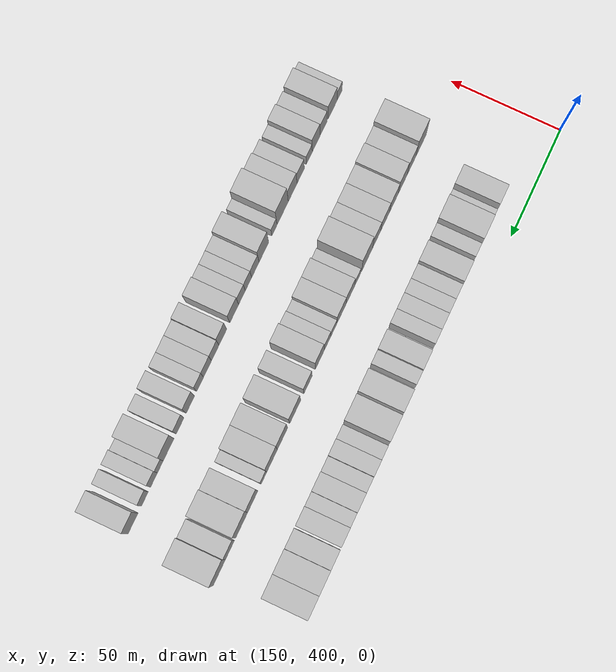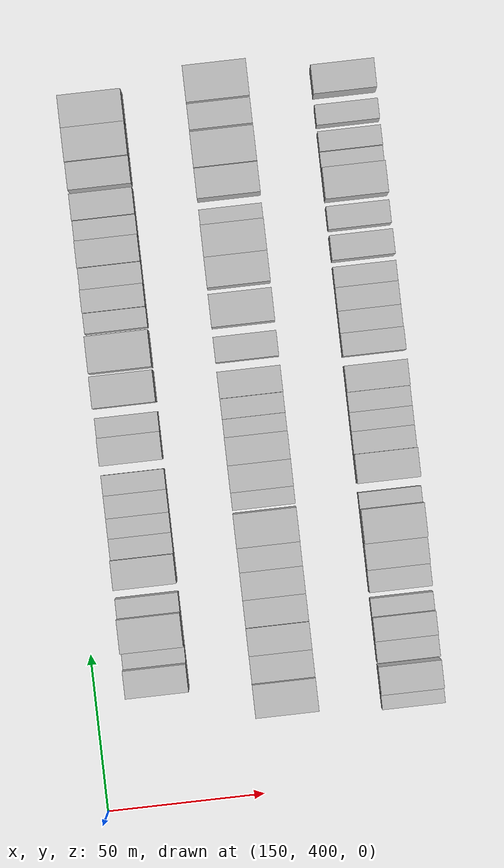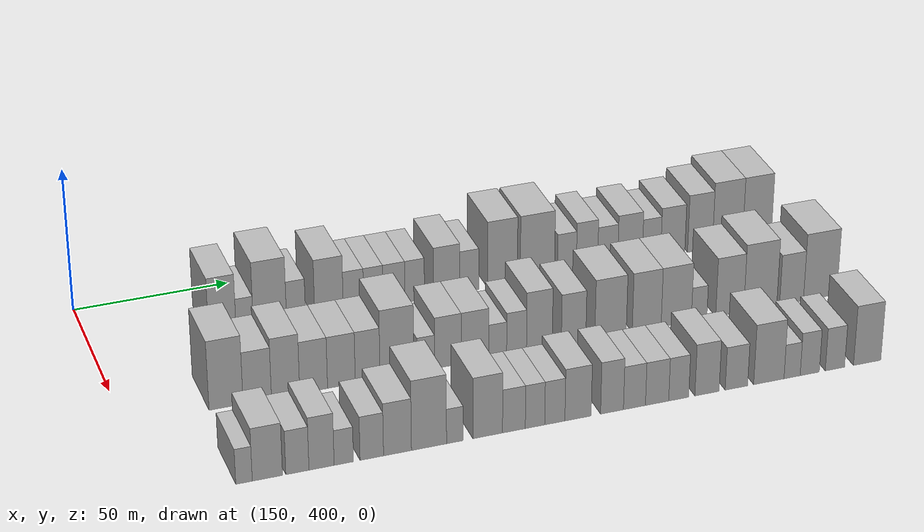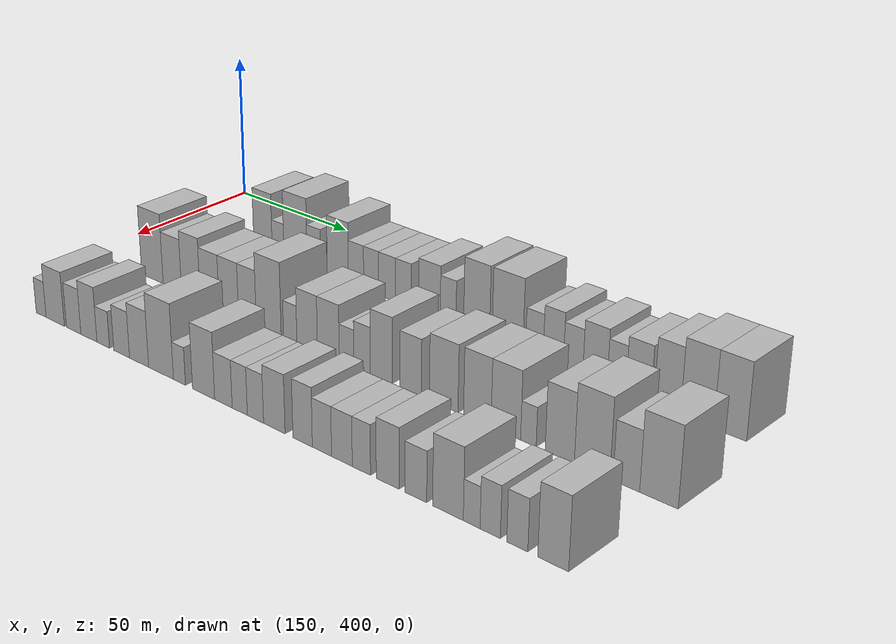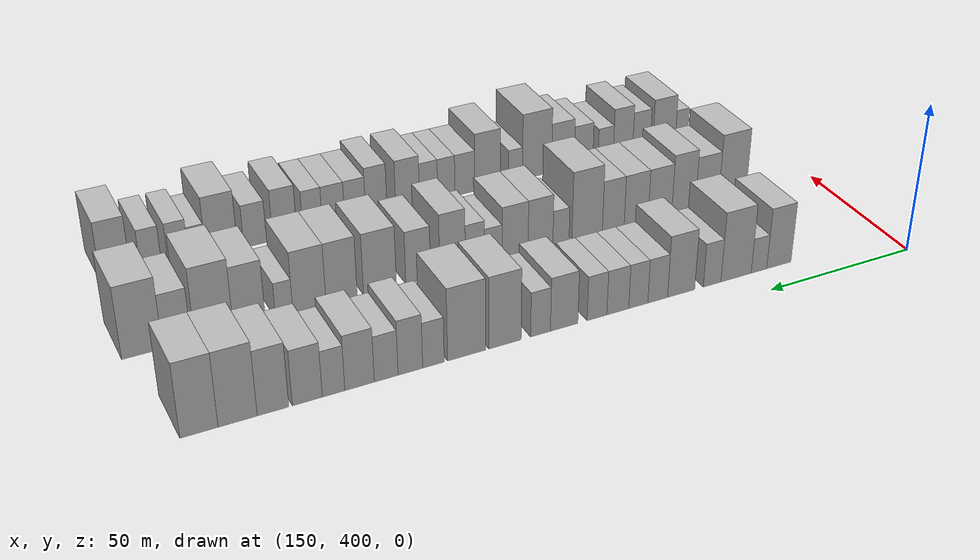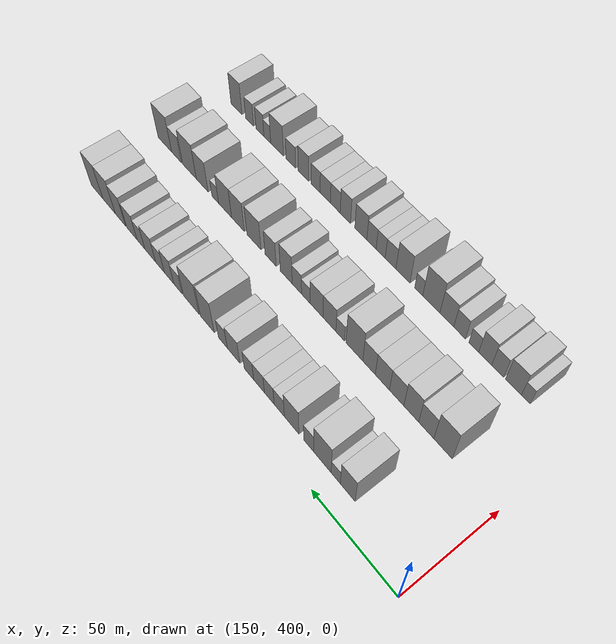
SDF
<sdf version="1.6">
 <world name="default">
  <model name="building_525">
   <static>1</static>
   <pose>170.0000 440.4379 0 0.000000 0.000000 0.000000</pose>
   <link name="link">
    <pose>0 0 10.50 0 0 0</pose>
    <collision name="collision"><geometry><box><size>20.0000 8.7908 21.0000</size></box></geometry></collision>
    <visual name="visual">
     <cast_shadows>0</cast_shadows>
     <geometry><box><size>20.0000 8.7908 21.0000</size></box></geometry>
     <material>
      <script>
       <uri>model://HANNAS_wall/materials/scripts</uri>
       <uri>model://HANNAS_wall/materials/textures</uri>
       <name>vrc/HANNAS_wall</name>
      </script>
     </material>
    </visual>
   </link>
  </model>
  <model name="building_526">
   <static>1</static>
   <pose>170.0000 447.6066 0 0.000000 0.000000 0.000000</pose>
   <link name="link">
    <pose>0 0 6.00 0 0 0</pose>
    <collision name="collision"><geometry><box><size>20.0000 5.5466 12.0000</size></box></geometry></collision>
    <visual name="visual">
     <cast_shadows>0</cast_shadows>
     <geometry><box><size>20.0000 5.5466 12.0000</size></box></geometry>
     <material>
      <script>
       <uri>model://HANNAS_wall/materials/scripts</uri>
       <uri>model://HANNAS_wall/materials/textures</uri>
       <name>vrc/HANNAS_wall</name>
      </script>
     </material>
    </visual>
   </link>
  </model>
  <model name="building_527">
   <static>1</static>
   <pose>170.0000 455.7455 0 0.000000 0.000000 0.000000</pose>
   <link name="link">
    <pose>0 0 12.00 0 0 0</pose>
    <collision name="collision"><geometry><box><size>20.0000 10.7312 24.0000</size></box></geometry></collision>
    <visual name="visual">
     <cast_shadows>0</cast_shadows>
     <geometry><box><size>20.0000 10.7312 24.0000</size></box></geometry>
     <material>
      <script>
       <uri>model://HANNAS_wall/materials/scripts</uri>
       <uri>model://HANNAS_wall/materials/textures</uri>
       <name>vrc/HANNAS_wall</name>
      </script>
     </material>
    </visual>
   </link>
  </model>
  <model name="building_528">
   <static>1</static>
   <pose>170.0000 464.1871 0 0.000000 0.000000 0.000000</pose>
   <link name="link">
    <pose>0 0 7.50 0 0 0</pose>
    <collision name="collision"><geometry><box><size>20.0000 6.1522 15.0000</size></box></geometry></collision>
    <visual name="visual">
     <cast_shadows>0</cast_shadows>
     <geometry><box><size>20.0000 6.1522 15.0000</size></box></geometry>
     <material>
      <script>
       <uri>model://HANNAS_wall/materials/scripts</uri>
       <uri>model://HANNAS_wall/materials/textures</uri>
       <name>vrc/HANNAS_wall</name>
      </script>
     </material>
    </visual>
   </link>
  </model>
  <model name="building_529">
   <static>1</static>
   <pose>170.0000 474.9335 0 0.000000 0.000000 0.000000</pose>
   <link name="link">
    <pose>0 0 10.50 0 0 0</pose>
    <collision name="collision"><geometry><box><size>20.0000 9.3405 21.0000</size></box></geometry></collision>
    <visual name="visual">
     <cast_shadows>0</cast_shadows>
     <geometry><box><size>20.0000 9.3405 21.0000</size></box></geometry>
     <material>
      <script>
       <uri>model://HANNAS_wall/materials/scripts</uri>
       <uri>model://HANNAS_wall/materials/textures</uri>
       <name>vrc/HANNAS_wall</name>
      </script>
     </material>
    </visual>
   </link>
  </model>
  <model name="building_530">
   <static>1</static>
   <pose>170.0000 482.9475 0 0.000000 0.000000 0.000000</pose>
   <link name="link">
    <pose>0 0 7.50 0 0 0</pose>
    <collision name="collision"><geometry><box><size>20.0000 6.6875 15.0000</size></box></geometry></collision>
    <visual name="visual">
     <cast_shadows>0</cast_shadows>
     <geometry><box><size>20.0000 6.6875 15.0000</size></box></geometry>
     <material>
      <script>
       <uri>model://HANNAS_wall/materials/scripts</uri>
       <uri>model://HANNAS_wall/materials/textures</uri>
       <name>vrc/HANNAS_wall</name>
      </script>
     </material>
    </visual>
   </link>
  </model>
  <model name="building_531">
   <static>1</static>
   <pose>170.0000 489.4958 0 0.000000 0.000000 0.000000</pose>
   <link name="link">
    <pose>0 0 7.50 0 0 0</pose>
    <collision name="collision"><geometry><box><size>20.0000 6.4092 15.0000</size></box></geometry></collision>
    <visual name="visual">
     <cast_shadows>0</cast_shadows>
     <geometry><box><size>20.0000 6.4092 15.0000</size></box></geometry>
     <material>
      <script>
       <uri>model://HANNAS_wall/materials/scripts</uri>
       <uri>model://HANNAS_wall/materials/textures</uri>
       <name>vrc/HANNAS_wall</name>
      </script>
     </material>
    </visual>
   </link>
  </model>
  <model name="building_532">
   <static>1</static>
   <pose>170.0000 496.3148 0 0.000000 0.000000 0.000000</pose>
   <link name="link">
    <pose>0 0 7.50 0 0 0</pose>
    <collision name="collision"><geometry><box><size>20.0000 7.2288 15.0000</size></box></geometry></collision>
    <visual name="visual">
     <cast_shadows>0</cast_shadows>
     <geometry><box><size>20.0000 7.2288 15.0000</size></box></geometry>
     <material>
      <script>
       <uri>model://HANNAS_wall/materials/scripts</uri>
       <uri>model://HANNAS_wall/materials/textures</uri>
       <name>vrc/HANNAS_wall</name>
      </script>
     </material>
    </visual>
   </link>
  </model>
  <model name="building_533">
   <static>1</static>
   <pose>170.0000 503.1783 0 0.000000 0.000000 0.000000</pose>
   <link name="link">
    <pose>0 0 7.50 0 0 0</pose>
    <collision name="collision"><geometry><box><size>20.0000 6.4983 15.0000</size></box></geometry></collision>
    <visual name="visual">
     <cast_shadows>0</cast_shadows>
     <geometry><box><size>20.0000 6.4983 15.0000</size></box></geometry>
     <material>
      <script>
       <uri>model://HANNAS_wall/materials/scripts</uri>
       <uri>model://HANNAS_wall/materials/textures</uri>
       <name>vrc/HANNAS_wall</name>
      </script>
     </material>
    </visual>
   </link>
  </model>
  <model name="building_534">
   <static>1</static>
   <pose>170.0000 513.8511 0 0.000000 0.000000 0.000000</pose>
   <link name="link">
    <pose>0 0 9.00 0 0 0</pose>
    <collision name="collision"><geometry><box><size>20.0000 8.8473 18.0000</size></box></geometry></collision>
    <visual name="visual">
     <cast_shadows>0</cast_shadows>
     <geometry><box><size>20.0000 8.8473 18.0000</size></box></geometry>
     <material>
      <script>
       <uri>model://HANNAS_wall/materials/scripts</uri>
       <uri>model://HANNAS_wall/materials/textures</uri>
       <name>vrc/HANNAS_wall</name>
      </script>
     </material>
    </visual>
   </link>
  </model>
  <model name="building_535">
   <static>1</static>
   <pose>170.0000 521.4214 0 0.000000 0.000000 0.000000</pose>
   <link name="link">
    <pose>0 0 7.50 0 0 0</pose>
    <collision name="collision"><geometry><box><size>20.0000 6.2934 15.0000</size></box></geometry></collision>
    <visual name="visual">
     <cast_shadows>0</cast_shadows>
     <geometry><box><size>20.0000 6.2934 15.0000</size></box></geometry>
     <material>
      <script>
       <uri>model://HANNAS_wall/materials/scripts</uri>
       <uri>model://HANNAS_wall/materials/textures</uri>
       <name>vrc/HANNAS_wall</name>
      </script>
     </material>
    </visual>
   </link>
  </model>
  <model name="building_536">
   <static>1</static>
   <pose>170.0000 532.6052 0 0.000000 0.000000 0.000000</pose>
   <link name="link">
    <pose>0 0 12.00 0 0 0</pose>
    <collision name="collision"><geometry><box><size>20.0000 10.0741 24.0000</size></box></geometry></collision>
    <visual name="visual">
     <cast_shadows>0</cast_shadows>
     <geometry><box><size>20.0000 10.0741 24.0000</size></box></geometry>
     <material>
      <script>
       <uri>model://HANNAS_wall/materials/scripts</uri>
       <uri>model://HANNAS_wall/materials/textures</uri>
       <name>vrc/HANNAS_wall</name>
      </script>
     </material>
    </visual>
   </link>
  </model>
  <model name="building_537">
   <static>1</static>
   <pose>170.0000 544.4705 0 0.000000 0.000000 0.000000</pose>
   <link name="link">
    <pose>0 0 12.00 0 0 0</pose>
    <collision name="collision"><geometry><box><size>20.0000 11.6567 24.0000</size></box></geometry></collision>
    <visual name="visual">
     <cast_shadows>0</cast_shadows>
     <geometry><box><size>20.0000 11.6567 24.0000</size></box></geometry>
     <material>
      <script>
       <uri>model://HANNAS_wall/materials/scripts</uri>
       <uri>model://HANNAS_wall/materials/textures</uri>
       <name>vrc/HANNAS_wall</name>
      </script>
     </material>
    </visual>
   </link>
  </model>
  <model name="building_538">
   <static>1</static>
   <pose>170.0000 554.5410 0 0.000000 0.000000 0.000000</pose>
   <link name="link">
    <pose>0 0 7.50 0 0 0</pose>
    <collision name="collision"><geometry><box><size>20.0000 6.4843 15.0000</size></box></geometry></collision>
    <visual name="visual">
     <cast_shadows>0</cast_shadows>
     <geometry><box><size>20.0000 6.4843 15.0000</size></box></geometry>
     <material>
      <script>
       <uri>model://HANNAS_wall/materials/scripts</uri>
       <uri>model://HANNAS_wall/materials/textures</uri>
       <name>vrc/HANNAS_wall</name>
      </script>
     </material>
    </visual>
   </link>
  </model>
  <model name="building_539">
   <static>1</static>
   <pose>170.0000 561.4516 0 0.000000 0.000000 0.000000</pose>
   <link name="link">
    <pose>0 0 9.00 0 0 0</pose>
    <collision name="collision"><geometry><box><size>20.0000 7.3370 18.0000</size></box></geometry></collision>
    <visual name="visual">
     <cast_shadows>0</cast_shadows>
     <geometry><box><size>20.0000 7.3370 18.0000</size></box></geometry>
     <material>
      <script>
       <uri>model://HANNAS_wall/materials/scripts</uri>
       <uri>model://HANNAS_wall/materials/textures</uri>
       <name>vrc/HANNAS_wall</name>
      </script>
     </material>
    </visual>
   </link>
  </model>
  <model name="building_540">
   <static>1</static>
   <pose>170.0000 568.5963 0 0.000000 0.000000 0.000000</pose>
   <link name="link">
    <pose>0 0 7.50 0 0 0</pose>
    <collision name="collision"><geometry><box><size>20.0000 6.9523 15.0000</size></box></geometry></collision>
    <visual name="visual">
     <cast_shadows>0</cast_shadows>
     <geometry><box><size>20.0000 6.9523 15.0000</size></box></geometry>
     <material>
      <script>
       <uri>model://HANNAS_wall/materials/scripts</uri>
       <uri>model://HANNAS_wall/materials/textures</uri>
       <name>vrc/HANNAS_wall</name>
      </script>
     </material>
    </visual>
   </link>
  </model>
  <model name="building_541">
   <static>1</static>
   <pose>170.0000 576.3454 0 0.000000 0.000000 0.000000</pose>
   <link name="link">
    <pose>0 0 9.00 0 0 0</pose>
    <collision name="collision"><geometry><box><size>20.0000 8.5460 18.0000</size></box></geometry></collision>
    <visual name="visual">
     <cast_shadows>0</cast_shadows>
     <geometry><box><size>20.0000 8.5460 18.0000</size></box></geometry>
     <material>
      <script>
       <uri>model://HANNAS_wall/materials/scripts</uri>
       <uri>model://HANNAS_wall/materials/textures</uri>
       <name>vrc/HANNAS_wall</name>
      </script>
     </material>
    </visual>
   </link>
  </model>
  <model name="building_542">
   <static>1</static>
   <pose>170.0000 583.8319 0 0.000000 0.000000 0.000000</pose>
   <link name="link">
    <pose>0 0 7.50 0 0 0</pose>
    <collision name="collision"><geometry><box><size>20.0000 6.4269 15.0000</size></box></geometry></collision>
    <visual name="visual">
     <cast_shadows>0</cast_shadows>
     <geometry><box><size>20.0000 6.4269 15.0000</size></box></geometry>
     <material>
      <script>
       <uri>model://HANNAS_wall/materials/scripts</uri>
       <uri>model://HANNAS_wall/materials/textures</uri>
       <name>vrc/HANNAS_wall</name>
      </script>
     </material>
    </visual>
   </link>
  </model>
  <model name="building_543">
   <static>1</static>
   <pose>170.0000 591.2724 0 0.000000 0.000000 0.000000</pose>
   <link name="link">
    <pose>0 0 9.00 0 0 0</pose>
    <collision name="collision"><geometry><box><size>20.0000 8.4540 18.0000</size></box></geometry></collision>
    <visual name="visual">
     <cast_shadows>0</cast_shadows>
     <geometry><box><size>20.0000 8.4540 18.0000</size></box></geometry>
     <material>
      <script>
       <uri>model://HANNAS_wall/materials/scripts</uri>
       <uri>model://HANNAS_wall/materials/textures</uri>
       <name>vrc/HANNAS_wall</name>
      </script>
     </material>
    </visual>
   </link>
  </model>
  <model name="building_544">
   <static>1</static>
   <pose>170.0000 600.8727 0 0.000000 0.000000 0.000000</pose>
   <link name="link">
    <pose>0 0 10.50 0 0 0</pose>
    <collision name="collision"><geometry><box><size>20.0000 8.7466 21.0000</size></box></geometry></collision>
    <visual name="visual">
     <cast_shadows>0</cast_shadows>
     <geometry><box><size>20.0000 8.7466 21.0000</size></box></geometry>
     <material>
      <script>
       <uri>model://HANNAS_wall/materials/scripts</uri>
       <uri>model://HANNAS_wall/materials/textures</uri>
       <name>vrc/HANNAS_wall</name>
      </script>
     </material>
    </visual>
   </link>
  </model>
  <model name="building_545">
   <static>1</static>
   <pose>170.0000 610.5800 0 0.000000 0.000000 0.000000</pose>
   <link name="link">
    <pose>0 0 12.00 0 0 0</pose>
    <collision name="collision"><geometry><box><size>20.0000 10.6678 24.0000</size></box></geometry></collision>
    <visual name="visual">
     <cast_shadows>0</cast_shadows>
     <geometry><box><size>20.0000 10.6678 24.0000</size></box></geometry>
     <material>
      <script>
       <uri>model://HANNAS_wall/materials/scripts</uri>
       <uri>model://HANNAS_wall/materials/textures</uri>
       <name>vrc/HANNAS_wall</name>
      </script>
     </material>
    </visual>
   </link>
  </model>
  <model name="building_546">
   <static>1</static>
   <pose>170.0000 621.0290 0 0.000000 0.000000 0.000000</pose>
   <link name="link">
    <pose>0 0 12.00 0 0 0</pose>
    <collision name="collision"><geometry><box><size>20.0000 10.2303 24.0000</size></box></geometry></collision>
    <visual name="visual">
     <cast_shadows>0</cast_shadows>
     <geometry><box><size>20.0000 10.2303 24.0000</size></box></geometry>
     <material>
      <script>
       <uri>model://HANNAS_wall/materials/scripts</uri>
       <uri>model://HANNAS_wall/materials/textures</uri>
       <name>vrc/HANNAS_wall</name>
      </script>
     </material>
    </visual>
   </link>
  </model>
  <model name="building_662">
   <static>1</static>
   <pose>210.0000 430.9041 0 0.000000 0.000000 0.000000</pose>
   <link name="link">
    <pose>0 0 12.00 0 0 0</pose>
    <collision name="collision"><geometry><box><size>20.0000 10.4933 24.0000</size></box></geometry></collision>
    <visual name="visual">
     <cast_shadows>0</cast_shadows>
     <geometry><box><size>20.0000 10.4933 24.0000</size></box></geometry>
     <material>
      <script>
       <uri>model://HANNAS_wall/materials/scripts</uri>
       <uri>model://HANNAS_wall/materials/textures</uri>
       <name>vrc/HANNAS_wall</name>
      </script>
     </material>
    </visual>
   </link>
  </model>
  <model name="building_663">
   <static>1</static>
   <pose>210.0000 440.5485 0 0.000000 0.000000 0.000000</pose>
   <link name="link">
    <pose>0 0 9.00 0 0 0</pose>
    <collision name="collision"><geometry><box><size>20.0000 8.7956 18.0000</size></box></geometry></collision>
    <visual name="visual">
     <cast_shadows>0</cast_shadows>
     <geometry><box><size>20.0000 8.7956 18.0000</size></box></geometry>
     <material>
      <script>
       <uri>model://HANNAS_wall/materials/scripts</uri>
       <uri>model://HANNAS_wall/materials/textures</uri>
       <name>vrc/HANNAS_wall</name>
      </script>
     </material>
    </visual>
   </link>
  </model>
  <model name="building_664">
   <static>1</static>
   <pose>210.0000 449.3477 0 0.000000 0.000000 0.000000</pose>
   <link name="link">
    <pose>0 0 10.50 0 0 0</pose>
    <collision name="collision"><geometry><box><size>20.0000 8.8027 21.0000</size></box></geometry></collision>
    <visual name="visual">
     <cast_shadows>0</cast_shadows>
     <geometry><box><size>20.0000 8.8027 21.0000</size></box></geometry>
     <material>
      <script>
       <uri>model://HANNAS_wall/materials/scripts</uri>
       <uri>model://HANNAS_wall/materials/textures</uri>
       <name>vrc/HANNAS_wall</name>
      </script>
     </material>
    </visual>
   </link>
  </model>
  <model name="building_665">
   <static>1</static>
   <pose>210.0000 458.1036 0 0.000000 0.000000 0.000000</pose>
   <link name="link">
    <pose>0 0 9.00 0 0 0</pose>
    <collision name="collision"><geometry><box><size>20.0000 8.7091 18.0000</size></box></geometry></collision>
    <visual name="visual">
     <cast_shadows>0</cast_shadows>
     <geometry><box><size>20.0000 8.7091 18.0000</size></box></geometry>
     <material>
      <script>
       <uri>model://HANNAS_wall/materials/scripts</uri>
       <uri>model://HANNAS_wall/materials/textures</uri>
       <name>vrc/HANNAS_wall</name>
      </script>
     </material>
    </visual>
   </link>
  </model>
  <model name="building_666">
   <static>1</static>
   <pose>210.0000 466.8326 0 0.000000 0.000000 0.000000</pose>
   <link name="link">
    <pose>0 0 9.00 0 0 0</pose>
    <collision name="collision"><geometry><box><size>20.0000 8.7491 18.0000</size></box></geometry></collision>
    <visual name="visual">
     <cast_shadows>0</cast_shadows>
     <geometry><box><size>20.0000 8.7491 18.0000</size></box></geometry>
     <material>
      <script>
       <uri>model://HANNAS_wall/materials/scripts</uri>
       <uri>model://HANNAS_wall/materials/textures</uri>
       <name>vrc/HANNAS_wall</name>
      </script>
     </material>
    </visual>
   </link>
  </model>
  <model name="building_667">
   <static>1</static>
   <pose>210.0000 475.1297 0 0.000000 0.000000 0.000000</pose>
   <link name="link">
    <pose>0 0 9.00 0 0 0</pose>
    <collision name="collision"><geometry><box><size>20.0000 7.8452 18.0000</size></box></geometry></collision>
    <visual name="visual">
     <cast_shadows>0</cast_shadows>
     <geometry><box><size>20.0000 7.8452 18.0000</size></box></geometry>
     <material>
      <script>
       <uri>model://HANNAS_wall/materials/scripts</uri>
       <uri>model://HANNAS_wall/materials/textures</uri>
       <name>vrc/HANNAS_wall</name>
      </script>
     </material>
    </visual>
   </link>
  </model>
  <model name="building_668">
   <static>1</static>
   <pose>210.0000 484.4471 0 0.000000 0.000000 0.000000</pose>
   <link name="link">
    <pose>0 0 12.00 0 0 0</pose>
    <collision name="collision"><geometry><box><size>20.0000 10.7894 24.0000</size></box></geometry></collision>
    <visual name="visual">
     <cast_shadows>0</cast_shadows>
     <geometry><box><size>20.0000 10.7894 24.0000</size></box></geometry>
     <material>
      <script>
       <uri>model://HANNAS_wall/materials/scripts</uri>
       <uri>model://HANNAS_wall/materials/textures</uri>
       <name>vrc/HANNAS_wall</name>
      </script>
     </material>
    </visual>
   </link>
  </model>
  <model name="building_669">
   <static>1</static>
   <pose>210.0000 493.6613 0 0.000000 0.000000 0.000000</pose>
   <link name="link">
    <pose>0 0 6.00 0 0 0</pose>
    <collision name="collision"><geometry><box><size>20.0000 5.6390 12.0000</size></box></geometry></collision>
    <visual name="visual">
     <cast_shadows>0</cast_shadows>
     <geometry><box><size>20.0000 5.6390 12.0000</size></box></geometry>
     <material>
      <script>
       <uri>model://HANNAS_wall/materials/scripts</uri>
       <uri>model://HANNAS_wall/materials/textures</uri>
       <name>vrc/HANNAS_wall</name>
      </script>
     </material>
    </visual>
   </link>
  </model>
  <model name="building_670">
   <static>1</static>
   <pose>210.0000 500.7571 0 0.000000 0.000000 0.000000</pose>
   <link name="link">
    <pose>0 0 9.00 0 0 0</pose>
    <collision name="collision"><geometry><box><size>20.0000 8.5526 18.0000</size></box></geometry></collision>
    <visual name="visual">
     <cast_shadows>0</cast_shadows>
     <geometry><box><size>20.0000 8.5526 18.0000</size></box></geometry>
     <material>
      <script>
       <uri>model://HANNAS_wall/materials/scripts</uri>
       <uri>model://HANNAS_wall/materials/textures</uri>
       <name>vrc/HANNAS_wall</name>
      </script>
     </material>
    </visual>
   </link>
  </model>
  <model name="building_671">
   <static>1</static>
   <pose>210.0000 509.4874 0 0.000000 0.000000 0.000000</pose>
   <link name="link">
    <pose>0 0 9.00 0 0 0</pose>
    <collision name="collision"><geometry><box><size>20.0000 8.9080 18.0000</size></box></geometry></collision>
    <visual name="visual">
     <cast_shadows>0</cast_shadows>
     <geometry><box><size>20.0000 8.9080 18.0000</size></box></geometry>
     <material>
      <script>
       <uri>model://HANNAS_wall/materials/scripts</uri>
       <uri>model://HANNAS_wall/materials/textures</uri>
       <name>vrc/HANNAS_wall</name>
      </script>
     </material>
    </visual>
   </link>
  </model>
  <model name="building_672">
   <static>1</static>
   <pose>210.0000 516.8400 0 0.000000 0.000000 0.000000</pose>
   <link name="link">
    <pose>0 0 6.00 0 0 0</pose>
    <collision name="collision"><geometry><box><size>20.0000 5.7973 12.0000</size></box></geometry></collision>
    <visual name="visual">
     <cast_shadows>0</cast_shadows>
     <geometry><box><size>20.0000 5.7973 12.0000</size></box></geometry>
     <material>
      <script>
       <uri>model://HANNAS_wall/materials/scripts</uri>
       <uri>model://HANNAS_wall/materials/textures</uri>
       <name>vrc/HANNAS_wall</name>
      </script>
     </material>
    </visual>
   </link>
  </model>
  <model name="building_673">
   <static>1</static>
   <pose>210.0000 522.9823 0 0.000000 0.000000 0.000000</pose>
   <link name="link">
    <pose>0 0 7.50 0 0 0</pose>
    <collision name="collision"><geometry><box><size>20.0000 6.4872 15.0000</size></box></geometry></collision>
    <visual name="visual">
     <cast_shadows>0</cast_shadows>
     <geometry><box><size>20.0000 6.4872 15.0000</size></box></geometry>
     <material>
      <script>
       <uri>model://HANNAS_wall/materials/scripts</uri>
       <uri>model://HANNAS_wall/materials/textures</uri>
       <name>vrc/HANNAS_wall</name>
      </script>
     </material>
    </visual>
   </link>
  </model>
  <model name="building_674">
   <static>1</static>
   <pose>210.0000 530.4381 0 0.000000 0.000000 0.000000</pose>
   <link name="link">
    <pose>0 0 10.50 0 0 0</pose>
    <collision name="collision"><geometry><box><size>20.0000 8.4245 21.0000</size></box></geometry></collision>
    <visual name="visual">
     <cast_shadows>0</cast_shadows>
     <geometry><box><size>20.0000 8.4245 21.0000</size></box></geometry>
     <material>
      <script>
       <uri>model://HANNAS_wall/materials/scripts</uri>
       <uri>model://HANNAS_wall/materials/textures</uri>
       <name>vrc/HANNAS_wall</name>
      </script>
     </material>
    </visual>
   </link>
  </model>
  <model name="building_675">
   <static>1</static>
   <pose>210.0000 541.6831 0 0.000000 0.000000 0.000000</pose>
   <link name="link">
    <pose>0 0 9.00 0 0 0</pose>
    <collision name="collision"><geometry><box><size>20.0000 8.0656 18.0000</size></box></geometry></collision>
    <visual name="visual">
     <cast_shadows>0</cast_shadows>
     <geometry><box><size>20.0000 8.0656 18.0000</size></box></geometry>
     <material>
      <script>
       <uri>model://HANNAS_wall/materials/scripts</uri>
       <uri>model://HANNAS_wall/materials/textures</uri>
       <name>vrc/HANNAS_wall</name>
      </script>
     </material>
    </visual>
   </link>
  </model>
  <model name="building_676">
   <static>1</static>
   <pose>210.0000 553.9377 0 0.000000 0.000000 0.000000</pose>
   <link name="link">
    <pose>0 0 10.50 0 0 0</pose>
    <collision name="collision"><geometry><box><size>20.0000 10.4436 21.0000</size></box></geometry></collision>
    <visual name="visual">
     <cast_shadows>0</cast_shadows>
     <geometry><box><size>20.0000 10.4436 21.0000</size></box></geometry>
     <material>
      <script>
       <uri>model://HANNAS_wall/materials/scripts</uri>
       <uri>model://HANNAS_wall/materials/textures</uri>
       <name>vrc/HANNAS_wall</name>
      </script>
     </material>
    </visual>
   </link>
  </model>
  <model name="building_677">
   <static>1</static>
   <pose>210.0000 566.0054 0 0.000000 0.000000 0.000000</pose>
   <link name="link">
    <pose>0 0 10.50 0 0 0</pose>
    <collision name="collision"><geometry><box><size>20.0000 9.6917 21.0000</size></box></geometry></collision>
    <visual name="visual">
     <cast_shadows>0</cast_shadows>
     <geometry><box><size>20.0000 9.6917 21.0000</size></box></geometry>
     <material>
      <script>
       <uri>model://HANNAS_wall/materials/scripts</uri>
       <uri>model://HANNAS_wall/materials/textures</uri>
       <name>vrc/HANNAS_wall</name>
      </script>
     </material>
    </visual>
   </link>
  </model>
  <model name="building_678">
   <static>1</static>
   <pose>210.0000 575.9415 0 0.000000 0.000000 0.000000</pose>
   <link name="link">
    <pose>0 0 10.50 0 0 0</pose>
    <collision name="collision"><geometry><box><size>20.0000 10.1805 21.0000</size></box></geometry></collision>
    <visual name="visual">
     <cast_shadows>0</cast_shadows>
     <geometry><box><size>20.0000 10.1805 21.0000</size></box></geometry>
     <material>
      <script>
       <uri>model://HANNAS_wall/materials/scripts</uri>
       <uri>model://HANNAS_wall/materials/textures</uri>
       <name>vrc/HANNAS_wall</name>
      </script>
     </material>
    </visual>
   </link>
  </model>
  <model name="building_679">
   <static>1</static>
   <pose>210.0000 583.6667 0 0.000000 0.000000 0.000000</pose>
   <link name="link">
    <pose>0 0 6.00 0 0 0</pose>
    <collision name="collision"><geometry><box><size>20.0000 5.2700 12.0000</size></box></geometry></collision>
    <visual name="visual">
     <cast_shadows>0</cast_shadows>
     <geometry><box><size>20.0000 5.2700 12.0000</size></box></geometry>
     <material>
      <script>
       <uri>model://HANNAS_wall/materials/scripts</uri>
       <uri>model://HANNAS_wall/materials/textures</uri>
       <name>vrc/HANNAS_wall</name>
      </script>
     </material>
    </visual>
   </link>
  </model>
  <model name="building_680">
   <static>1</static>
   <pose>210.0000 594.0833 0 0.000000 0.000000 0.000000</pose>
   <link name="link">
    <pose>0 0 10.50 0 0 0</pose>
    <collision name="collision"><geometry><box><size>20.0000 9.5631 21.0000</size></box></geometry></collision>
    <visual name="visual">
     <cast_shadows>0</cast_shadows>
     <geometry><box><size>20.0000 9.5631 21.0000</size></box></geometry>
     <material>
      <script>
       <uri>model://HANNAS_wall/materials/scripts</uri>
       <uri>model://HANNAS_wall/materials/textures</uri>
       <name>vrc/HANNAS_wall</name>
      </script>
     </material>
    </visual>
   </link>
  </model>
  <model name="building_681">
   <static>1</static>
   <pose>210.0000 604.5281 0 0.000000 0.000000 0.000000</pose>
   <link name="link">
    <pose>0 0 12.00 0 0 0</pose>
    <collision name="collision"><geometry><box><size>20.0000 11.3264 24.0000</size></box></geometry></collision>
    <visual name="visual">
     <cast_shadows>0</cast_shadows>
     <geometry><box><size>20.0000 11.3264 24.0000</size></box></geometry>
     <material>
      <script>
       <uri>model://HANNAS_wall/materials/scripts</uri>
       <uri>model://HANNAS_wall/materials/textures</uri>
       <name>vrc/HANNAS_wall</name>
      </script>
     </material>
    </visual>
   </link>
  </model>
  <model name="building_682">
   <static>1</static>
   <pose>210.0000 615.3019 0 0.000000 0.000000 0.000000</pose>
   <link name="link">
    <pose>0 0 9.00 0 0 0</pose>
    <collision name="collision"><geometry><box><size>20.0000 8.2212 18.0000</size></box></geometry></collision>
    <visual name="visual">
     <cast_shadows>0</cast_shadows>
     <geometry><box><size>20.0000 8.2212 18.0000</size></box></geometry>
     <material>
      <script>
       <uri>model://HANNAS_wall/materials/scripts</uri>
       <uri>model://HANNAS_wall/materials/textures</uri>
       <name>vrc/HANNAS_wall</name>
      </script>
     </material>
    </visual>
   </link>
  </model>
  <model name="building_683">
   <static>1</static>
   <pose>210.0000 625.2201 0 0.000000 0.000000 0.000000</pose>
   <link name="link">
    <pose>0 0 12.00 0 0 0</pose>
    <collision name="collision"><geometry><box><size>20.0000 11.6153 24.0000</size></box></geometry></collision>
    <visual name="visual">
     <cast_shadows>0</cast_shadows>
     <geometry><box><size>20.0000 11.6153 24.0000</size></box></geometry>
     <material>
      <script>
       <uri>model://HANNAS_wall/materials/scripts</uri>
       <uri>model://HANNAS_wall/materials/textures</uri>
       <name>vrc/HANNAS_wall</name>
      </script>
     </material>
    </visual>
   </link>
  </model>
  <model name="building_803">
   <static>1</static>
   <pose>250.0000 425.5253 0 0.000000 0.000000 0.000000</pose>
   <link name="link">
    <pose>0 0 6.00 0 0 0</pose>
    <collision name="collision"><geometry><box><size>20.0000 4.9070 12.0000</size></box></geometry></collision>
    <visual name="visual">
     <cast_shadows>0</cast_shadows>
     <geometry><box><size>20.0000 4.9070 12.0000</size></box></geometry>
     <material>
      <script>
       <uri>model://HANNAS_wall/materials/scripts</uri>
       <uri>model://HANNAS_wall/materials/textures</uri>
       <name>vrc/HANNAS_wall</name>
      </script>
     </material>
    </visual>
   </link>
  </model>
  <model name="building_804">
   <static>1</static>
   <pose>250.0000 432.4757 0 0.000000 0.000000 0.000000</pose>
   <link name="link">
    <pose>0 0 9.00 0 0 0</pose>
    <collision name="collision"><geometry><box><size>20.0000 8.9939 18.0000</size></box></geometry></collision>
    <visual name="visual">
     <cast_shadows>0</cast_shadows>
     <geometry><box><size>20.0000 8.9939 18.0000</size></box></geometry>
     <material>
      <script>
       <uri>model://HANNAS_wall/materials/scripts</uri>
       <uri>model://HANNAS_wall/materials/textures</uri>
       <name>vrc/HANNAS_wall</name>
      </script>
     </material>
    </visual>
   </link>
  </model>
  <model name="building_805">
   <static>1</static>
   <pose>250.0000 441.4402 0 0.000000 0.000000 0.000000</pose>
   <link name="link">
    <pose>0 0 7.50 0 0 0</pose>
    <collision name="collision"><geometry><box><size>20.0000 6.9351 15.0000</size></box></geometry></collision>
    <visual name="visual">
     <cast_shadows>0</cast_shadows>
     <geometry><box><size>20.0000 6.9351 15.0000</size></box></geometry>
     <material>
      <script>
       <uri>model://HANNAS_wall/materials/scripts</uri>
       <uri>model://HANNAS_wall/materials/textures</uri>
       <name>vrc/HANNAS_wall</name>
      </script>
     </material>
    </visual>
   </link>
  </model>
  <model name="building_806">
   <static>1</static>
   <pose>250.0000 448.6980 0 0.000000 0.000000 0.000000</pose>
   <link name="link">
    <pose>0 0 9.00 0 0 0</pose>
    <collision name="collision"><geometry><box><size>20.0000 7.5803 18.0000</size></box></geometry></collision>
    <visual name="visual">
     <cast_shadows>0</cast_shadows>
     <geometry><box><size>20.0000 7.5803 18.0000</size></box></geometry>
     <material>
      <script>
       <uri>model://HANNAS_wall/materials/scripts</uri>
       <uri>model://HANNAS_wall/materials/textures</uri>
       <name>vrc/HANNAS_wall</name>
      </script>
     </material>
    </visual>
   </link>
  </model>
  <model name="building_807">
   <static>1</static>
   <pose>250.0000 455.4065 0 0.000000 0.000000 0.000000</pose>
   <link name="link">
    <pose>0 0 6.00 0 0 0</pose>
    <collision name="collision"><geometry><box><size>20.0000 5.8368 12.0000</size></box></geometry></collision>
    <visual name="visual">
     <cast_shadows>0</cast_shadows>
     <geometry><box><size>20.0000 5.8368 12.0000</size></box></geometry>
     <material>
      <script>
       <uri>model://HANNAS_wall/materials/scripts</uri>
       <uri>model://HANNAS_wall/materials/textures</uri>
       <name>vrc/HANNAS_wall</name>
      </script>
     </material>
    </visual>
   </link>
  </model>
  <model name="building_808">
   <static>1</static>
   <pose>250.0000 463.8962 0 0.000000 0.000000 0.000000</pose>
   <link name="link">
    <pose>0 0 7.50 0 0 0</pose>
    <collision name="collision"><geometry><box><size>20.0000 7.1427 15.0000</size></box></geometry></collision>
    <visual name="visual">
     <cast_shadows>0</cast_shadows>
     <geometry><box><size>20.0000 7.1427 15.0000</size></box></geometry>
     <material>
      <script>
       <uri>model://HANNAS_wall/materials/scripts</uri>
       <uri>model://HANNAS_wall/materials/textures</uri>
       <name>vrc/HANNAS_wall</name>
      </script>
     </material>
    </visual>
   </link>
  </model>
  <model name="building_809">
   <static>1</static>
   <pose>250.0000 471.7340 0 0.000000 0.000000 0.000000</pose>
   <link name="link">
    <pose>0 0 9.00 0 0 0</pose>
    <collision name="collision"><geometry><box><size>20.0000 8.5328 18.0000</size></box></geometry></collision>
    <visual name="visual">
     <cast_shadows>0</cast_shadows>
     <geometry><box><size>20.0000 8.5328 18.0000</size></box></geometry>
     <material>
      <script>
       <uri>model://HANNAS_wall/materials/scripts</uri>
       <uri>model://HANNAS_wall/materials/textures</uri>
       <name>vrc/HANNAS_wall</name>
      </script>
     </material>
    </visual>
   </link>
  </model>
  <model name="building_810">
   <static>1</static>
   <pose>250.0000 481.4002 0 0.000000 0.000000 0.000000</pose>
   <link name="link">
    <pose>0 0 12.00 0 0 0</pose>
    <collision name="collision"><geometry><box><size>20.0000 10.7994 24.0000</size></box></geometry></collision>
    <visual name="visual">
     <cast_shadows>0</cast_shadows>
     <geometry><box><size>20.0000 10.7994 24.0000</size></box></geometry>
     <material>
      <script>
       <uri>model://HANNAS_wall/materials/scripts</uri>
       <uri>model://HANNAS_wall/materials/textures</uri>
       <name>vrc/HANNAS_wall</name>
      </script>
     </material>
    </visual>
   </link>
  </model>
  <model name="building_811">
   <static>1</static>
   <pose>250.0000 489.3696 0 0.000000 0.000000 0.000000</pose>
   <link name="link">
    <pose>0 0 6.00 0 0 0</pose>
    <collision name="collision"><geometry><box><size>20.0000 5.1395 12.0000</size></box></geometry></collision>
    <visual name="visual">
     <cast_shadows>0</cast_shadows>
     <geometry><box><size>20.0000 5.1395 12.0000</size></box></geometry>
     <material>
      <script>
       <uri>model://HANNAS_wall/materials/scripts</uri>
       <uri>model://HANNAS_wall/materials/textures</uri>
       <name>vrc/HANNAS_wall</name>
      </script>
     </material>
    </visual>
   </link>
  </model>
  <model name="building_812">
   <static>1</static>
   <pose>250.0000 499.5551 0 0.000000 0.000000 0.000000</pose>
   <link name="link">
    <pose>0 0 10.50 0 0 0</pose>
    <collision name="collision"><geometry><box><size>20.0000 9.2315 21.0000</size></box></geometry></collision>
    <visual name="visual">
     <cast_shadows>0</cast_shadows>
     <geometry><box><size>20.0000 9.2315 21.0000</size></box></geometry>
     <material>
      <script>
       <uri>model://HANNAS_wall/materials/scripts</uri>
       <uri>model://HANNAS_wall/materials/textures</uri>
       <name>vrc/HANNAS_wall</name>
      </script>
     </material>
    </visual>
   </link>
  </model>
  <model name="building_813">
   <static>1</static>
   <pose>250.0000 507.7377 0 0.000000 0.000000 0.000000</pose>
   <link name="link">
    <pose>0 0 7.50 0 0 0</pose>
    <collision name="collision"><geometry><box><size>20.0000 7.1337 15.0000</size></box></geometry></collision>
    <visual name="visual">
     <cast_shadows>0</cast_shadows>
     <geometry><box><size>20.0000 7.1337 15.0000</size></box></geometry>
     <material>
      <script>
       <uri>model://HANNAS_wall/materials/scripts</uri>
       <uri>model://HANNAS_wall/materials/textures</uri>
       <name>vrc/HANNAS_wall</name>
      </script>
     </material>
    </visual>
   </link>
  </model>
  <model name="building_814">
   <static>1</static>
   <pose>250.0000 514.3504 0 0.000000 0.000000 0.000000</pose>
   <link name="link">
    <pose>0 0 7.50 0 0 0</pose>
    <collision name="collision"><geometry><box><size>20.0000 6.0918 15.0000</size></box></geometry></collision>
    <visual name="visual">
     <cast_shadows>0</cast_shadows>
     <geometry><box><size>20.0000 6.0918 15.0000</size></box></geometry>
     <material>
      <script>
       <uri>model://HANNAS_wall/materials/scripts</uri>
       <uri>model://HANNAS_wall/materials/textures</uri>
       <name>vrc/HANNAS_wall</name>
      </script>
     </material>
    </visual>
   </link>
  </model>
  <model name="building_815">
   <static>1</static>
   <pose>250.0000 520.5863 0 0.000000 0.000000 0.000000</pose>
   <link name="link">
    <pose>0 0 7.50 0 0 0</pose>
    <collision name="collision"><geometry><box><size>20.0000 6.3800 15.0000</size></box></geometry></collision>
    <visual name="visual">
     <cast_shadows>0</cast_shadows>
     <geometry><box><size>20.0000 6.3800 15.0000</size></box></geometry>
     <material>
      <script>
       <uri>model://HANNAS_wall/materials/scripts</uri>
       <uri>model://HANNAS_wall/materials/textures</uri>
       <name>vrc/HANNAS_wall</name>
      </script>
     </material>
    </visual>
   </link>
  </model>
  <model name="building_816">
   <static>1</static>
   <pose>250.0000 527.9381 0 0.000000 0.000000 0.000000</pose>
   <link name="link">
    <pose>0 0 9.00 0 0 0</pose>
    <collision name="collision"><geometry><box><size>20.0000 8.3235 18.0000</size></box></geometry></collision>
    <visual name="visual">
     <cast_shadows>0</cast_shadows>
     <geometry><box><size>20.0000 8.3235 18.0000</size></box></geometry>
     <material>
      <script>
       <uri>model://HANNAS_wall/materials/scripts</uri>
       <uri>model://HANNAS_wall/materials/textures</uri>
       <name>vrc/HANNAS_wall</name>
      </script>
     </material>
    </visual>
   </link>
  </model>
  <model name="building_817">
   <static>1</static>
   <pose>250.0000 538.7513 0 0.000000 0.000000 0.000000</pose>
   <link name="link">
    <pose>0 0 9.00 0 0 0</pose>
    <collision name="collision"><geometry><box><size>20.0000 7.3028 18.0000</size></box></geometry></collision>
    <visual name="visual">
     <cast_shadows>0</cast_shadows>
     <geometry><box><size>20.0000 7.3028 18.0000</size></box></geometry>
     <material>
      <script>
       <uri>model://HANNAS_wall/materials/scripts</uri>
       <uri>model://HANNAS_wall/materials/textures</uri>
       <name>vrc/HANNAS_wall</name>
      </script>
     </material>
    </visual>
   </link>
  </model>
  <model name="building_818">
   <static>1</static>
   <pose>250.0000 545.9351 0 0.000000 0.000000 0.000000</pose>
   <link name="link">
    <pose>0 0 7.50 0 0 0</pose>
    <collision name="collision"><geometry><box><size>20.0000 7.0649 15.0000</size></box></geometry></collision>
    <visual name="visual">
     <cast_shadows>0</cast_shadows>
     <geometry><box><size>20.0000 7.0649 15.0000</size></box></geometry>
     <material>
      <script>
       <uri>model://HANNAS_wall/materials/scripts</uri>
       <uri>model://HANNAS_wall/materials/textures</uri>
       <name>vrc/HANNAS_wall</name>
      </script>
     </material>
    </visual>
   </link>
  </model>
  <model name="building_819">
   <static>1</static>
   <pose>250.0000 553.2124 0 0.000000 0.000000 0.000000</pose>
   <link name="link">
    <pose>0 0 7.50 0 0 0</pose>
    <collision name="collision"><geometry><box><size>20.0000 7.4897 15.0000</size></box></geometry></collision>
    <visual name="visual">
     <cast_shadows>0</cast_shadows>
     <geometry><box><size>20.0000 7.4897 15.0000</size></box></geometry>
     <material>
      <script>
       <uri>model://HANNAS_wall/materials/scripts</uri>
       <uri>model://HANNAS_wall/materials/textures</uri>
       <name>vrc/HANNAS_wall</name>
      </script>
     </material>
    </visual>
   </link>
  </model>
  <model name="building_820">
   <static>1</static>
   <pose>250.0000 560.1949 0 0.000000 0.000000 0.000000</pose>
   <link name="link">
    <pose>0 0 7.50 0 0 0</pose>
    <collision name="collision"><geometry><box><size>20.0000 6.4754 15.0000</size></box></geometry></collision>
    <visual name="visual">
     <cast_shadows>0</cast_shadows>
     <geometry><box><size>20.0000 6.4754 15.0000</size></box></geometry>
     <material>
      <script>
       <uri>model://HANNAS_wall/materials/scripts</uri>
       <uri>model://HANNAS_wall/materials/textures</uri>
       <name>vrc/HANNAS_wall</name>
      </script>
     </material>
    </visual>
   </link>
  </model>
  <model name="building_821">
   <static>1</static>
   <pose>250.0000 569.3709 0 0.000000 0.000000 0.000000</pose>
   <link name="link">
    <pose>0 0 9.00 0 0 0</pose>
    <collision name="collision"><geometry><box><size>20.0000 7.8765 18.0000</size></box></geometry></collision>
    <visual name="visual">
     <cast_shadows>0</cast_shadows>
     <geometry><box><size>20.0000 7.8765 18.0000</size></box></geometry>
     <material>
      <script>
       <uri>model://HANNAS_wall/materials/scripts</uri>
       <uri>model://HANNAS_wall/materials/textures</uri>
       <name>vrc/HANNAS_wall</name>
      </script>
     </material>
    </visual>
   </link>
  </model>
  <model name="building_822">
   <static>1</static>
   <pose>250.0000 578.9767 0 0.000000 0.000000 0.000000</pose>
   <link name="link">
    <pose>0 0 7.50 0 0 0</pose>
    <collision name="collision"><geometry><box><size>20.0000 7.3351 15.0000</size></box></geometry></collision>
    <visual name="visual">
     <cast_shadows>0</cast_shadows>
     <geometry><box><size>20.0000 7.3351 15.0000</size></box></geometry>
     <material>
      <script>
       <uri>model://HANNAS_wall/materials/scripts</uri>
       <uri>model://HANNAS_wall/materials/textures</uri>
       <name>vrc/HANNAS_wall</name>
      </script>
     </material>
    </visual>
   </link>
  </model>
  <model name="building_823">
   <static>1</static>
   <pose>250.0000 589.6481 0 0.000000 0.000000 0.000000</pose>
   <link name="link">
    <pose>0 0 10.50 0 0 0</pose>
    <collision name="collision"><geometry><box><size>20.0000 10.0077 21.0000</size></box></geometry></collision>
    <visual name="visual">
     <cast_shadows>0</cast_shadows>
     <geometry><box><size>20.0000 10.0077 21.0000</size></box></geometry>
     <material>
      <script>
       <uri>model://HANNAS_wall/materials/scripts</uri>
       <uri>model://HANNAS_wall/materials/textures</uri>
       <name>vrc/HANNAS_wall</name>
      </script>
     </material>
    </visual>
   </link>
  </model>
  <model name="building_824">
   <static>1</static>
   <pose>250.0000 597.3314 0 0.000000 0.000000 0.000000</pose>
   <link name="link">
    <pose>0 0 6.00 0 0 0</pose>
    <collision name="collision"><geometry><box><size>20.0000 5.3589 12.0000</size></box></geometry></collision>
    <visual name="visual">
     <cast_shadows>0</cast_shadows>
     <geometry><box><size>20.0000 5.3589 12.0000</size></box></geometry>
     <material>
      <script>
       <uri>model://HANNAS_wall/materials/scripts</uri>
       <uri>model://HANNAS_wall/materials/textures</uri>
       <name>vrc/HANNAS_wall</name>
      </script>
     </material>
    </visual>
   </link>
  </model>
  <model name="building_825">
   <static>1</static>
   <pose>250.0000 603.1898 0 0.000000 0.000000 0.000000</pose>
   <link name="link">
    <pose>0 0 7.50 0 0 0</pose>
    <collision name="collision"><geometry><box><size>20.0000 6.3578 15.0000</size></box></geometry></collision>
    <visual name="visual">
     <cast_shadows>0</cast_shadows>
     <geometry><box><size>20.0000 6.3578 15.0000</size></box></geometry>
     <material>
      <script>
       <uri>model://HANNAS_wall/materials/scripts</uri>
       <uri>model://HANNAS_wall/materials/textures</uri>
       <name>vrc/HANNAS_wall</name>
      </script>
     </material>
    </visual>
   </link>
  </model>
  <model name="building_826">
   <static>1</static>
   <pose>250.0000 611.5930 0 0.000000 0.000000 0.000000</pose>
   <link name="link">
    <pose>0 0 7.50 0 0 0</pose>
    <collision name="collision"><geometry><box><size>20.0000 6.4485 15.0000</size></box></geometry></collision>
    <visual name="visual">
     <cast_shadows>0</cast_shadows>
     <geometry><box><size>20.0000 6.4485 15.0000</size></box></geometry>
     <material>
      <script>
       <uri>model://HANNAS_wall/materials/scripts</uri>
       <uri>model://HANNAS_wall/materials/textures</uri>
       <name>vrc/HANNAS_wall</name>
      </script>
     </material>
    </visual>
   </link>
  </model>
  <model name="building_827">
   <static>1</static>
   <pose>250.0000 622.4051 0 0.000000 0.000000 0.000000</pose>
   <link name="link">
    <pose>0 0 10.50 0 0 0</pose>
    <collision name="collision"><geometry><box><size>20.0000 9.1759 21.0000</size></box></geometry></collision>
    <visual name="visual">
     <cast_shadows>0</cast_shadows>
     <geometry><box><size>20.0000 9.1759 21.0000</size></box></geometry>
     <material>
      <script>
       <uri>model://HANNAS_wall/materials/scripts</uri>
       <uri>model://HANNAS_wall/materials/textures</uri>
       <name>vrc/HANNAS_wall</name>
      </script>
     </material>
    </visual>
   </link>
  </model>
 </world>
</sdf>
